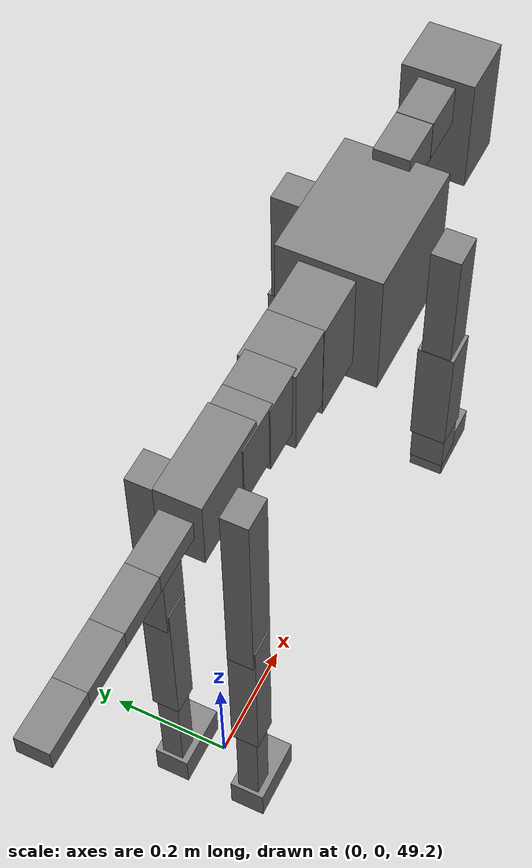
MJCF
<mujoco model="dog">

    <default>
        <joint armature="0.02" stiffness="1" damping="0.2" limited="true"/>
        <geom condim="3" friction="1 0.05 0.05" margin="0.01"/>
        <motor ctrllimited="true" ctrlrange="-1.0 1.0" forcelimited="true" gear="50"/>
    </default>

    <compiler inertiafromgeom="true" angle="radian"/>

    <option timestep="0.016" iterations="50" tolerance="1e-10" solver="Newton" jacobian="dense" cone="pyramidal"/>

    <size nconmax="20000" njmax="60000" nstack="5000000"/>
    <visual>
        <map force="0.1" zfar="30"/>
        <rgba haze="0.15 0.25 0.35 1"/>
        <quality shadowsize="2048"/>
        <global offwidth="800" offheight="800"/>
    </visual>

    <asset>
        <texture type="skybox" builtin="gradient" rgb1="0.3 0.5 0.7" rgb2="0 0 0" width="512" height="512"/>
        <texture name="texplane" type="2d" builtin="checker" rgb1=".2 .3 .4" rgb2=".1 0.15 0.2" width="512" height="512"
                 mark="cross" markrgb=".8 .8 .8"/>
        <texture name="texgeom" type="cube" builtin="flat" mark="cross" width="127" height="1278" rgb1="0.8 0.6 0.4"
                 rgb2="0.8 0.6 0.4" markrgb="1 1 1" random="0.01"/>

        <material name="matplane" reflectance="0.3" texture="texplane" texrepeat="1 1" texuniform="true"/>
        <material name="matgeom" texture="texgeom" texuniform="true" rgba="0.8 0.6 .4 1"/>
    </asset>

    <worldbody>
        <geom name="floor" pos="0 0 0" size="0 0 .25" type="plane" material="matplane" condim="3"/>

        <light directional="false" diffuse=".2 .2 .2" specular="0 0 0" pos="0 0 5" dir="0 0 -1" castshadow="false"/>
        <light mode="targetbodycom" target="torso" directional="false" diffuse=".8 .8 .8" specular="0.3 0.3 0.3"
               pos="0 0 4.0" dir="0 0 -1"/>

        <body name="root" pos="0 0 50">
            <freejoint name="root_1"/>
            <geom type="box" pos="0 0 -0.02" size="0.0774  0.0358  0.063" density="2030"/>

            <body name="spine1" pos="0.054 0 0">
                <joint name="spine1_y" axis="0 1 0" range="0 0.7" limited="true"/>
                <geom type="box" pos="0.02375 0 -0.03" size="0.04375  0.0375  0.05985" density="2030"/>

                <body name="spine2" pos="0.0612 0 0">
                    <joint name="spine2_y" axis="0 1 0" range="-0.15 0.15" limited="true"/>
                    <geom type="box" pos="0.03555  0  -0.04" size="0.04055  0.039  0.06615" density="2030"/>

                    <body name="spine3" pos="0.0730 0 0">
                        <joint name="spine3_y" axis="0 1 0" range="-0.15 0.15" limited="true"/>
                        <geom type="box" pos="0.03555  0  -0.057" size="0.04555  0.0445  0.081" density="2030"/>

                        <body name="spine4" pos="0.0780 0 0">
                            <joint name="spine4_y" axis="0 1 0" range="-0.15 0.15" limited="true"/>
                            <geom type="box" pos="0.05265  0  -0.07" size="0.05265  0.045  0.09135" density="2030"/>

                            <body name="torso" pos="0.1082 0 0">
                                <joint name="torso_y" axis="0 1 0" range="-0.15 0.15" limited="true"/>
                                <geom type="box" pos="0.11925  0  -0.085" size="0.11925  0.085  0.11745"
                                      density="2030"/>

                                <body name="neck1" pos="0.2160  0   0.0180">
                                    <joint name="neck1_y" axis="0 1 0" range="-1.2  -1" limited="true"/>
                                    <geom type="box" pos="0.0423  0  0" size="0.0423  0.03  0.036" density="2325"/>

                                    <body name="neck2" pos="0.0853  0  0">
                                        <joint name="neck2_y" axis="0 1 0" range="0.1  0" limited="true"/>
                                        <geom type="box" pos="0.0423  0  0" size="0.0423  0.03  0.036" density="2325"/>

                                        <body name="head" pos="0.0853  0  0">
                                            <joint name="head_y" axis="0 1 0" range="-0.3  -0.2" limited="true"/>
                                            <geom type="box" pos="0.0531  0  -0.055" size="0.0531  0.06  0.1044"
                                                  density="4030"/>

                                        </body>
                                    </body>
                                </body>

                                <body name="front_shoulder" pos="0.156  0   -0.0480">
                                    <joint name="front_shoulder_y" axis="0 1 0" range="-1 1.5" limited="true"/>
                                    <geom type="box" pos="0 0.13 -0.0979" size="0.0286  0.0244  0.1245" density="1158"/>
                                    <geom type="box" pos="0 -0.13 -0.0979" size="0.0286  0.0244  0.1245"
                                          density="1158"/>

                                    <body name="front_elbow" pos="0  0  -0.1958">
                                        <joint name="front_elbow_y" axis="0 1 0" range="-2 0" limited="true"/>
                                        <geom type="box" pos="0 0.13 -0.1067" size="0.0298  0.0304  0.1067"
                                              density="1081"/>
                                        <geom type="box" pos="0 -0.13 -0.1067" size="0.0298  0.0304  0.1067"
                                              density="1081"/>

                                        <body name="front_wrist" pos="0  0  -0.2133">
                                            <joint name="front_wrist_y" axis="0 1 0" range="-0.2 0" limited="true"/>
                                            <geom type="box" pos="0 0.13 -0.0285" size="0.0256  0.0284  0.0416"
                                                  density="1664"/>
                                            <geom type="box" pos="0 -0.13 -0.0285" size="0.0256  0.0284  0.0416"
                                                  density="1664"/>

                                            <body name="front_finger_end" pos="0  0  -0.0569">
                                                <joint name="front_finger_y" axis="0 1 0" range="-0.4 1"
                                                       limited="true"/>
                                                <geom type="box" pos="0.0281  0.13  -0.0121"
                                                      size="0.0516  0.0281  0.0271" density="1515"/>
                                                <geom type="box" pos="0.0281  -0.13  -0.0121"
                                                      size="0.0516  0.0281  0.0271" density="1515"/>

                                            </body>

                                        </body>
                                    </body>
                                </body>

                            </body>
                        </body>
                    </body>
                </body>
            </body>

            <body name="back_hip" pos="-0.03 0 -0.018">
                <joint name="back_hip_y" axis="0 1 0" range="-1.5 0.3" limited="true"/>
                <geom type="box" pos="0 0.07 -0.1616" size="0.0272  0.0213  0.1844" density="1154"/>
                <geom type="box" pos="0 -0.07 -0.1616" size="0.0272  0.0213  0.1844" density="1154"/>

                <body name="back_knee" pos="0  0  -0.3232">
                    <joint name="back_knee_y" axis="0 1 0" range="0 2.8" limited="true"/>
                    <geom type="box" pos="0 0.07 -0.1303" size="0.0234  0.0231  0.1459" density="1227"/>
                    <geom type="box" pos="0 -0.07 -0.1303" size="0.0234  0.0231  0.1459" density="1227"/>

                    <body name="back_ankle" pos="0  0  -0.2606">
                        <joint name="back_ankle_y" axis="0 1 0" range="-2.2 0" limited="true"/>
                        <geom type="box" pos="0 0.07 -0.1038" size="0.0182  0.0182  0.1150" density="1284"/>
                        <geom type="box" pos="0 -0.07 -0.1038" size="0.0182  0.0182  0.1150" density="1284"/>

                        <body name="back_toe_end" pos="0  0  -0.2076">
                            <joint name="back_toe_y" axis="0 1 0" range="-0.4 1" limited="true"/>
                            <geom type="box" pos="0.0293  0.07  -0.0158" size="0.0538  0.0293  0.0308" density="1515"/>
                            <geom type="box" pos="0.0293  -0.07  -0.0158" size="0.0538  0.0293  0.0308" density="1515"/>

                        </body>
                    </body>
                </body>
            </body>

            <body name="tail1" pos="-0.074 0 -0.006">
                <joint name="tail1_y" axis="0 1 0" range="-0.2 0.2" limited="true"/>
                <geom type="box" pos="-0.0536  0  0" size="0.045  0.025  0.0175" density="1587"/>

                <body name="tail2" pos="-0.09 0 0">
                    <joint name="tail2_y" axis="0 1 0" range="-0.2 0.2" limited="true"/>
                    <geom type="box" pos="-0.0536  0  0" size="0.045  0.025  0.0175" density="1587"/>

                    <body name="tail3" pos="-0.09 0 0">
                        <joint name="tail3_y" axis="0 1 0" range="-0.2 0.2" limited="true"/>
                        <geom type="box" pos="-0.0536  0  0" size="0.045  0.025  0.0175" density="1587"/>

                        <body name="tail4" pos="-0.09 0 0">
                            <joint name="tail4_y" axis="0 1 0" range="-0.2 0.2" limited="true"/>
                            <geom type="box" pos="-0.0536  0  0" size="0.045  0.025  0.0175" density="1587"/>

                        </body>
                    </body>
                </body>
            </body>
        </body>
    </worldbody>

    <actuator>
        <motor joint="spine1_y" forcerange="-150 150     "/>
        <motor joint="spine2_y" forcerange="-150 150     "/>
        <motor joint="spine3_y" forcerange="-150 150     "/>
        <motor joint="spine4_y" forcerange="-150 150     "/>
        <motor joint="torso_y" forcerange="-150 150     "/>
        <motor joint="neck1_y" forcerange="-100 100       "/>
        <motor joint="neck2_y" forcerange="-100 100       "/>
        <motor joint="head_y" forcerange="-150 150       "/>
        <motor joint="front_shoulder_y" forcerange="-124.22 138.72"/>
        <motor joint="front_elbow_y" forcerange="-139.83 181.44"/>
        <motor joint="front_wrist_y" forcerange="-124.28 103.29"/>
        <motor joint="front_finger_y" forcerange="-50.09 59.95"/>
        <motor joint="back_hip_y" forcerange="-274.79 209.72"/>
        <motor joint="back_knee_y" forcerange="-233.34 302.21"/>
        <motor joint="back_angle_y" forcerange="-64.44 127.40"/>
        <motor joint="back_toe_y" forcerange="-108.80 45.76"/>
        <motor joint="tail1_y" forcerange="-50 50     "/>
        <motor joint="tail2_y" forcerange="-50 50     "/>
        <motor joint="tail3_y" forcerange="-50 50     "/>
        <motor joint="tail4_y" forcerange="-50 50     "/>
    </actuator>
</mujoco>
